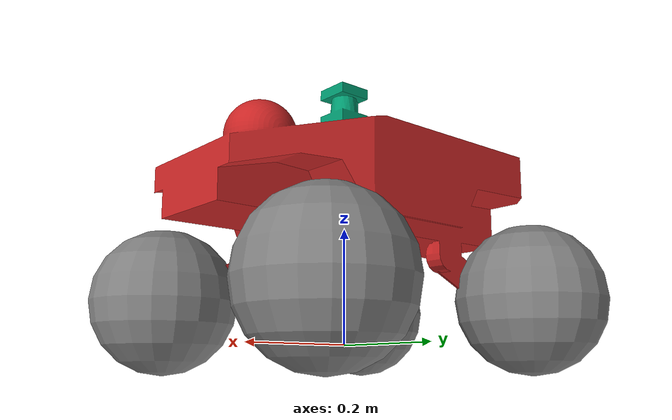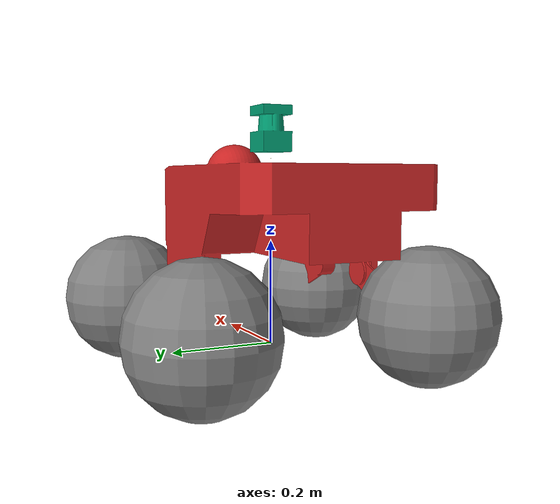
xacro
<?xml version="1.0"?>
<robot name="summit_xl" xmlns:xacro="http://www.ros.org/wiki/xacro">

  <!-- Import all Gazebo-customization elements, including Gazebo colors -->
  <xacro:include filename="$(find summit_xl_description)/urdf/summit_xl_omni.gazebo" />

  <!-- Constants for robot dimensions -->
  <xacro:property name="PI" value="3.1415926535897931"/>
  <xacro:property name="wheel_offset_x" value="0.223" />    <!-- x,y,z in base_footprint CS -->
  <!-- xacro:property name="wheel_offset_y" value="0.204" / -->
  <xacro:property name="wheel_offset_y" value="0.223" />    <!-- y=x for swerve drive turn -->
  <xacro:property name="wheel_offset_z" value="0.0" />
  <xacro:property name="steer_joint_damping" value="2.0" />
  <xacro:property name="steer_joint_friction" value="1.0" />
  <xacro:property name="steer_joint_effort_limit" value="5.0" />
  <xacro:property name="steer_joint_velocity_limit" value="5.0" />
  <xacro:property name="steer_mechanical_reduction" value="100.0" />

  <xacro:property name="wheel_joint_damping" value="1.0" />
  <xacro:property name="wheel_joint_friction" value="0.1" />
  <xacro:property name="wheel_joint_effort_limit" value="100.0" />
  <xacro:property name="wheel_joint_velocity_limit" value="100.0" />
  <xacro:property name="wheel_mechanical_reduction" value="100.0" />

  <xacro:property name="ptz_joint_effort_limit" value="100.0" />
  <xacro:property name="ptz_joint_velocity_limit" value="100.0"/>
  <xacro:property name="ptz_joint_friction" value="0.1" />
  <xacro:property name="ptz_joint_damping" value="0.1" />
  <xacro:property name="ptz_mechanical_reduction" value="1.0" />

  <!-- Used for fixing robot to Gazebo 'base_link' -->

  <!-- BASE FOOTPRINT -->
  <!-- base_footprint is a fictitious link(frame) that is on the ground right below base_link origin,
             navigation stack depends on this frame -->
  <link name="base_footprint">
      <visual>
          <origin xyz="0 0 0" rpy="0 0 0" />
          <geometry>
             <box size="0.001 0.001 0.001" />
          </geometry>
      </visual>

      <collision>
          <origin xyz="0 0 0" rpy="0 0 0" />
          <geometry>
            <box size="0.001 0.001 0.001" />
         </geometry>
     </collision>
  </link>

  <joint name="base_footprint_joint" type="fixed">
     <!--NB: While you would think this would make it go up, it is oddly reversed.
      This moves the joint to 0,0,0 where we want it for rviz, etc. -->
     <origin xyz="0 0 0.075" rpy="0 0 0" />
     <parent link="base_footprint"/>
     <child link="base_link" />
  </joint>

  <!-- BASE_LINK (RED) -->
  <link name="base_link">
    <inertial>
      <mass value="25.0" />
      <origin xyz="0 0 0" />
      <inertia  ixx="1.391" ixy="0.004"  ixz="0.0"  iyy="6.853"  iyz="0.0"  izz="6.125" />
    </inertial>
    <visual>
       <origin xyz="0 0 0" rpy="0 0 0" />
       <geometry>
	 <mesh filename="package://summit_xl_description/meshes/summit_xl_chassis_cam1.dae"/>
       </geometry>
    </visual>
    <collision>
       <origin xyz="0 0 0" rpy="0 0 0 " />
       <geometry>
         <mesh filename="package://summit_xl_description/meshes/summit_xl_chassis_cam1.dae"/>
       </geometry>
    </collision>
  </link>

  <!-- WHEEL 1                      -->
  <!-- FRONT RIGHT WHEEL - STEERING -->
  <link name="front_right_steer_link">
    <inertial>
      <mass value="0.1" />
      <origin xyz="0 0 0" />
      <inertia  ixx="0.01" ixy="0.0"  ixz="0.0"  iyy="0.01"  iyz="0.0"  izz="0.01" />
    </inertial>
    <visual>
       <!-- visual origin is defined w.r.t. link local coordinate system -->
       <origin xyz="0 0 0" rpy="0 0 0" />
       <geometry>
         <cylinder radius="0.015" length="0.025"/>
       </geometry>
    </visual>
    <collision>
       <origin xyz="0 0 0" rpy="0 0 0" />
       <geometry>
         <cylinder radius="0.015" length="0.025"/>
       </geometry>
    </collision>
  </link>

  <joint name="joint_front_right_steer" type="continuous"> <!-- revolute -->
    <parent link="base_link"/>
    <child link="front_right_steer_link"/>
    <origin xyz="${wheel_offset_x} -${wheel_offset_y} 0" rpy="0 0 0" />
    <axis xyz="0 0 1" rpy="0 0 0"/>
    <limit effort="${steer_joint_effort_limit}" velocity="${steer_joint_velocity_limit}" lower="-1.570796327" upper="1.570796327"/>
    <joint_properties damping="${steer_joint_damping}" friction="{steer_joint_friction}"/>
  </joint>

  <transmission name="joint_frw_steer_trans">
	 <type>transmission_interface/SimpleTransmission</type>
     <joint name="joint_front_right_steer" />
     <actuator name="joint_frw_steer_motor">
	    <hardwareInterface>EffortJointInterface</hardwareInterface>
        <mechanicalReduction>${steer_mechanical_reduction}</mechanicalReduction>
	 </actuator>
  </transmission>

  <!-- WHEEL 1                      -->
  <!-- FRONT RIGHT WHEEL - TRACTION -->
  <link name="front_right_wheel">
    <inertial>
      <mass value="1.250" />
      <origin xyz="0 0 0" />
      <inertia  ixx="0.0109375" ixy="0.0"  ixz="0.0"  iyy="0.021125"  iyz="0.0"  izz="0.0109375" />
    </inertial>
    <visual>
       <origin xyz="0 0 0" rpy="0 0 0" />
       <geometry>
	 <!-- mesh filename="package://summit_xl_description/meshes/summit_xl_wheel.stl" scale="1.0 1.0 1.0"/ -->
         <sphere radius="0.127"/>
       </geometry>
	<material name="grey">
	  <color rgba="0.5 0.5 0.5 1"/>
      	</material>
    </visual>
    <collision>
       <origin xyz="0 0 0" rpy="0 0 0" />
       <geometry>
	 <!-- mesh filename="package://summit_xl_description/meshes/summit_xl_wheel.stl" scale="1.0 1.0 1.0"/ -->
         <sphere radius="0.127"/>
       </geometry>
    </collision>
  </link>

  <joint name="joint_front_right_wheel" type="continuous">
    <parent link="front_right_steer_link"/>
    <child link="front_right_wheel"/>
    <origin xyz="0 0 0" rpy="0 0 0" />
    <axis xyz="0 -1 0" />
    <limit effort="${wheel_joint_effort_limit}" velocity="${wheel_joint_velocity_limit}"/>
    <joint_properties damping="${wheel_joint_damping}" friction="{wheel_joint_friction}"/>
  </joint>

  <transmission name="joint_blw_trans">
	 <type>transmission_interface/SimpleTransmission</type>
     <joint name="joint_front_right_wheel" />
     <actuator name="joint_frw_motor">
	    <hardwareInterface>EffortJointInterface</hardwareInterface>
        <mechanicalReduction>${wheel_mechanical_reduction}</mechanicalReduction>
     </actuator>
  </transmission>

  <!-- WHEEL 2                      -->
  <!-- FRONT LEFT WHEEL  - STEERING -->
  <link name="front_left_steer_link">
    <inertial>
      <mass value="0.1" />
      <origin xyz="0 0 0" />
      <inertia  ixx="0.01" ixy="0.0"  ixz="0.0"  iyy="0.01"  iyz="0.0"  izz="0.01" />
    </inertial>
    <visual>
       <!-- visual origin is defined w.r.t. link local coordinate system -->
       <origin xyz="0 0 0" rpy="0 0 0" />
       <geometry>
         <cylinder radius="0.015" length="0.025"/>
       </geometry>
    </visual>
    <collision>
       <origin xyz="0 0 0" rpy="0 0 0" />
       <geometry>
         <cylinder radius="0.015" length="0.025"/>
       </geometry>
    </collision>
  </link>

  <joint name="joint_front_left_steer" type="continuous">
    <parent link="base_link"/>
    <child link="front_left_steer_link"/>
    <origin xyz="${wheel_offset_x} ${wheel_offset_y} 0" rpy="0 0 0" />
    <axis xyz="0 0 1" rpy="0 0 0"/>
    <limit effort="${steer_joint_effort_limit}" velocity="${steer_joint_velocity_limit}" lower="-1.570796327" upper="1.570796327"/>
    <joint_properties damping="${steer_joint_damping}" friction="{steer_joint_friction}"/>
  </joint>

  <transmission name="joint_flw_steer_trans">
	 <type>transmission_interface/SimpleTransmission</type>
     <joint name="joint_front_left_steer" />
     <actuator name="joint_flw_steer_motor">
	    <hardwareInterface>EffortJointInterface</hardwareInterface>
        <mechanicalReduction>${steer_mechanical_reduction}</mechanicalReduction>
     </actuator>
  </transmission>

  <!-- WHEEL 2                      -->
  <!-- FRONT LEFT WHEEL  - TRACTION -->
  <link name="front_left_wheel">
    <inertial>
      <mass value="1.250" />
      <origin xyz="0 0 0" />
      <inertia  ixx="0.0109375" ixy="0.0"  ixz="0.0"  iyy="0.021125"  iyz="0.0"  izz="0.0109375" />
    </inertial>
    <visual>
       <origin xyz="0 0 0" rpy="0 0 0" />
       <geometry>
	 <!-- mesh filename="package://summit_xl_description/meshes/summit_xl_wheel.stl" scale="1.0 1.0 1.0"/ -->
         <sphere radius="0.127"/>
       </geometry>
	<material name="grey">
		<color rgba="0.5 0.5 0.5 1"/>
      	</material>
    </visual>
    <collision>
       <origin xyz="0 0 0" rpy="0 0 0" />
       <geometry>
	 <!-- mesh filename="package://summit_xl_description/meshes/summit_xl_wheel.stl" scale="1.0 1.0 1.0"/ -->
	 <sphere radius="0.127"/>
       </geometry>
    </collision>
  </link>

  <joint name="joint_front_left_wheel" type="continuous">
    <parent link="front_left_steer_link"/>
    <child link="front_left_wheel"/>
    <origin xyz="0 0 0" rpy="0 0 0" />
    <axis xyz="0 1 0" />
    <limit effort="${wheel_joint_effort_limit}" velocity="${wheel_joint_velocity_limit}"/>
    <joint_properties damping="${wheel_joint_damping}" friction="{wheel_joint_friction}"/>
  </joint>

  <transmission name="joint_flw_trans">
	 <type>transmission_interface/SimpleTransmission</type>
     <joint name="joint_front_left_wheel" />
     <actuator name="joint_flw_motor">
	    <hardwareInterface>EffortJointInterface</hardwareInterface>
        <mechanicalReduction>${wheel_mechanical_reduction}</mechanicalReduction>
     </actuator>
  </transmission>

  <!-- WHEEL 3                      -->
  <!-- BACK LEFT WHEEL  - STEERING -->
  <link name="back_left_steer_link">
    <inertial>
      <mass value="0.1" />
      <origin xyz="0 0 0" />
      <inertia  ixx="0.01" ixy="0.0"  ixz="0.0"  iyy="0.01"  iyz="0.0"  izz="0.01" />
    </inertial>
    <visual>
       <!-- visual origin is defined w.r.t. link local coordinate system -->
       <origin xyz="0 0 0" rpy="0 0 0" />
       <geometry>
         <cylinder radius="0.015" length="0.025"/>
       </geometry>
    </visual>
    <collision>
       <origin xyz="0 0 0" rpy="0 0 0" />
       <geometry>
         <cylinder radius="0.015" length="0.025"/>
       </geometry>
    </collision>
  </link>

  <joint name="joint_back_left_steer" type="continuous">
    <parent link="base_link"/>
    <child link="back_left_steer_link"/>
    <origin xyz="-${wheel_offset_x} ${wheel_offset_y} 0" rpy="0 0 0" />
    <axis xyz="0 0 1" rpy="0 0 0"/>
    <limit effort="${steer_joint_effort_limit}" velocity="${steer_joint_velocity_limit}" lower="-1.570796327" upper="1.570796327"/>
    <joint_properties damping="${steer_joint_damping}" friction="{steer_joint_friction}"/>
  </joint>

  <transmission name="joint_blw_steer_trans">
	 <type>transmission_interface/SimpleTransmission</type>
     <joint name="joint_back_left_steer" />
     <actuator name="joint_blw_steer_motor">
	    <hardwareInterface>EffortJointInterface</hardwareInterface>
        <mechanicalReduction>${steer_mechanical_reduction}</mechanicalReduction>
     </actuator>
  </transmission>

  <!-- WHEEL 3                      -->
  <!-- BACK LEFT WHEEL  - TRACTION  -->
  <link name="back_left_wheel">
    <inertial>
      <mass value="1.250" />
      <origin xyz="0 0 0" />
      <inertia  ixx="0.0109375" ixy="0.0"  ixz="0.0"  iyy="0.021125"  iyz="0.0"  izz="0.0109375" />
    </inertial>
    <visual>
       <origin xyz="0 0 0" rpy="0 0 0" />
       <geometry>
	 <sphere radius="0.127"/>
	 <!-- mesh filename="package://summit_xl_description/meshes/summit_xl_wheel.stl" scale="1.0 1.0 1.0"/ -->
       </geometry>
	<material name="grey">
		<color rgba="0.5 0.5 0.5 1"/>
      	</material>
    </visual>
    <collision>
       <origin xyz="0 0 0" rpy="0 0 0" />
       <geometry>
	 <sphere radius="0.127"/>
	 <!-- mesh filename="package://summit_xl_description/meshes/summit_xl_wheel.stl" scale="1.0 1.0 1.0"/ -->
       </geometry>
    </collision>
  </link>

  <joint name="joint_back_left_wheel" type="continuous">
    <parent link="back_left_steer_link"/>
    <child link="back_left_wheel"/>
    <origin xyz="0 0 0" rpy="0 0 0" />
    <axis xyz="0 1 0" rpy="0 0 0" />
    <limit effort="${wheel_joint_effort_limit}" velocity="${wheel_joint_velocity_limit}"/>
    <joint_properties damping="${wheel_joint_damping}" friction="{wheel_joint_friction}"/>
  </joint>

  <transmission name="joint_blw_trans">
	 <type>transmission_interface/SimpleTransmission</type>
     <joint name="joint_back_left_wheel" />
     <actuator name="joint_blw_motor">
	    <hardwareInterface>EffortJointInterface</hardwareInterface>
        <mechanicalReduction>${wheel_mechanical_reduction}</mechanicalReduction>
	 </actuator>
  </transmission>

  <!-- WHEEL 4                      -->
  <!-- BACK RIGHT WHEEL  - STEERING -->
  <link name="back_right_steer_link">
    <inertial>
      <mass value="0.1" />
      <origin xyz="0 0 0" />
      <inertia  ixx="0.01" ixy="0.0"  ixz="0.0"  iyy="0.01"  iyz="0.0"  izz="0.01" />
    </inertial>
    <visual>
       <!-- visual origin is defined w.r.t. link local coordinate system -->
       <origin xyz="0 0 0" rpy="0 0 0" />
       <geometry>
         <cylinder radius="0.015" length="0.025"/>
       </geometry>
    </visual>
    <collision>
       <origin xyz="0 0 0" rpy="0 0 0" />
       <geometry>
         <cylinder radius="0.015" length="0.025"/>
       </geometry>
    </collision>
  </link>

  <joint name="joint_back_right_steer" type="continuous">
    <parent link="base_link"/>
    <child link="back_right_steer_link"/>
    <origin xyz="-0.223 -0.204 0" rpy="0 0 0" />
    <origin xyz="-${wheel_offset_x} -${wheel_offset_y} 0" rpy="0 0 0" />
    <axis xyz="0 0 1" rpy="0 0 0"/>
    <limit effort="${steer_joint_effort_limit}" velocity="${steer_joint_velocity_limit}" lower="-1.570796327" upper="1.570796327"/>
    <joint_properties damping="${steer_joint_damping}" friction="{steer_joint_friction}"/>
  </joint>

  <transmission name="joint_brw_steer_trans">
	 <type>transmission_interface/SimpleTransmission</type>
     <joint name="joint_back_right_steer" />
     <actuator name="joint_brw_steer_motor">
	    <hardwareInterface>EffortJointInterface</hardwareInterface>
        <mechanicalReduction>${steer_mechanical_reduction}</mechanicalReduction>
     </actuator>
  </transmission>

  <!-- WHEEL 4                      -->
  <!-- BACK RIGHT WHEEL  - TRACTION -->
  <link name="back_right_wheel">
    <inertial>
      <mass value="1.250" />
      <origin xyz="0 0 0" />
      <inertia  ixx="0.0109375" ixy="0.0"  ixz="0.0"  iyy="0.021125"  iyz="0.0"  izz="0.0109375" />
    </inertial>
    <visual>
       <origin xyz="0 0 0" rpy="0 0 0" />
       <geometry>
	 <sphere radius="0.127"/>
	 <!-- mesh filename="package://summit_xl_description/meshes/summit_xl_wheel.stl" scale="1.0 1.0 1.0"/ -->
       </geometry>
	<material name="grey">
	 <color rgba="0.5 0.5 0.5 1"/>
      	</material>
    </visual>
    <collision>
       <origin xyz="0 0 0" rpy="0 0 0" />
       <geometry>
	 <sphere radius="0.127"/>
	 <!-- mesh filename="package://summit_xl_description/meshes/summit_xl_wheel.stl" scale="1.0 1.0 1.0"/ -->
       </geometry>
    </collision>
  </link>

  <joint name="joint_back_right_wheel" type="continuous">
    <parent link="back_right_steer_link"/>
    <child link="back_right_wheel"/>
    <origin xyz="0 0 0" rpy="0 0 0" />
    <axis xyz="0 -1 0" />
    <limit effort="${wheel_joint_effort_limit}" velocity="${wheel_joint_velocity_limit}"/>
    <joint_properties damping="${wheel_joint_damping}" friction="{wheel_joint_friction}"/>
  </joint>

  <transmission name="joint_brw_trans">
	 <type>transmission_interface/SimpleTransmission</type>
     <joint name="joint_back_right_wheel" />
     <actuator name="joint_brw_motor">
	    <hardwareInterface>EffortJointInterface</hardwareInterface>
        <mechanicalReduction>${wheel_mechanical_reduction}</mechanicalReduction>
	 </actuator>
  </transmission>

  <!-- HOKUYO SENSOR -->
  <joint name="hokuyo_laser_joint" type="fixed">
     <axis xyz="0 1 0" />
     <origin xyz="0.0 0.0 0.325"/>
     <parent link="base_link"/>
     <child link="hokuyo_laser_link"/>
  </joint>
  <link name="hokuyo_laser_link" type="laser">
    <collision>
      <origin xyz="0 0 0" rpy="0 0 0"/>
      <geometry>
	     <box size="0.1 0.1 0.1"/>
      </geometry>
    </collision>
    <visual>
      <origin xyz="0 0 0" rpy="0 0 0"/>
      <geometry>
        <mesh filename="package://summit_xl_description/meshes/hokuyo-utm30-lx.dae"/>
      </geometry>
    </visual>
    <inertial>
      <mass value="1e-5" />
      <origin xyz="0 0 0" rpy="0 0 0"/>
      <inertia ixx="1e-6" ixy="0" ixz="0" iyy="1e-6" iyz="0" izz="1e-6" />
    </inertial>
  </link>

  <!-- IMU SENSOR -->
  <joint name="imu_joint" type="fixed">
      <axis xyz="1 0 0"/>
      <origin xyz="0 0 0.2825"/>
      <parent link="base_link"/>
      <child link="imu_link"/>
  </joint>

  <link name="imu_link">
      <inertial>
        <mass value="0.001"/>
        <origin rpy="0 0 0" xyz="0 0 0"/>
        <inertia ixx="0.0001" ixy="0" ixz="0" iyy="0.000001" iyz="0" izz="0.0001"/>
      </inertial>
      <visual>
        <origin rpy="0 0 0" xyz="0 0 0"/>
        <geometry>
          <box size="0.001 0.001 0.001"/>
        </geometry>
      </visual>
      <collision>
        <origin rpy="0 0 0" xyz="0 0 0"/>
        <geometry>
          <box size=".001 .001 .001"/>
        </geometry>
      </collision>
  </link>

  <!-- AXIS PTZ CAMERA -->
  <joint name="camera_joint" type="fixed">
     <axis xyz="0 1 0" />
     <!-- FRONT MOUNT -->
     <origin xyz="0.3 0.0 0.25"/>
     <parent link="base_link"/>
     <child link="camera_link"/>
  </joint>
  <link name="camera_link">
     <inertial>
       <mass value="0.001" />
       <origin xyz="0 0 0" rpy="0 0 0" />
       <inertia ixx="0.0001" ixy="0" ixz="0" iyy="0.000001" iyz="0" izz="0.0001" />
    </inertial>
  </link>

  <!-- AXIS PTZ CAMERA WITH PAN AND TILT -->
  <link name="camera_base_link">
     <inertial>
       <mass value="0.1" />
       <origin xyz="0 0 0" rpy="0 0 0" />
       <inertia ixx="0.1" ixy="0" ixz="0" iyy="0.1" iyz="0" izz="0.1" />
    </inertial>
  </link>

  <joint name="joint_camera" type="fixed">
     <axis xyz="0 1 0" />
     <!--origin xyz="0.180 0.0 0.270"/-->
     <origin xyz="-0.025 0.0 0.440"/>
     <parent link="base_link"/>
     <child link="camera_base_link"/>
  </joint>

  <link name="camera_pan_link">
     <inertial>
       <mass value="0.1" />
       <origin xyz="0 0 0" rpy="0 0 0" />
       <inertia ixx="0.1" ixy="0" ixz="0" iyy="0.1" iyz="0" izz="0.1" />
    </inertial>
  </link>

  <joint name="joint_camera_pan" type="continuous">
     <axis xyz="0 0 1" />
     <origin xyz="0.0 0.0 0.0"/>
     <parent link="camera_base_link"/>
     <child link="camera_pan_link"/>
     <limit effort="${ptz_joint_effort_limit}" velocity="${ptz_joint_velocity_limit}" lower="-3.1416" upper="3.1416"/>
     <joint_properties damping="${ptz_joint_damping}" friction="{ptz_joint_friction}"/>
  </joint>

  <transmission name="joint_pan_trans">
	 <type>transmission_interface/SimpleTransmission</type>
     <joint name="joint_camera_pan" />
     <actuator name="pan_motor">
	   <hardwareInterface>EffortJointInterface</hardwareInterface>
       <mechanicalReduction>${ptz_mechanical_reduction}</mechanicalReduction>
     </actuator>
  </transmission>

  <link name="camera_tilt_link">
     <inertial>
       <mass value="0.1" />
       <!-- origin xyz="0 0 0" rpy="0 0 0" / -->
       <origin xyz="0 0 0.3" rpy="0 0 0" />
       <inertia ixx="0.1" ixy="0" ixz="0" iyy="0.1" iyz="0" izz="0.1" />
    </inertial>
  </link>

  <joint name="joint_camera_tilt" type="continuous">
     <axis xyz="0 1 0" />
     <origin xyz="0.0 0.0 0.0"/>
     <parent link="camera_pan_link"/>
     <child link="camera_tilt_link"/>
     <limit effort="${ptz_joint_effort_limit}" velocity="${ptz_joint_velocity_limit}" lower="-1.5708" upper="1.5708"/>
     <joint_properties damping="${ptz_joint_damping}" friction="{ptz_joint_friction}"/>
  </joint>

  <transmission name="joint_tilt_trans">
	 <type>transmission_interface/SimpleTransmission</type>
     <joint name="joint_camera_tilt" />
     <actuator name="tilt_motor">
	   <hardwareInterface>EffortJointInterface</hardwareInterface>
       <mechanicalReduction>${ptz_mechanical_reduction}</mechanicalReduction>
     </actuator>
  </transmission>

</robot>
